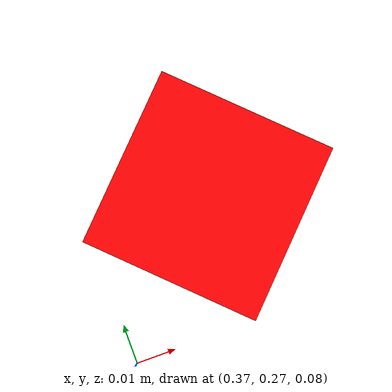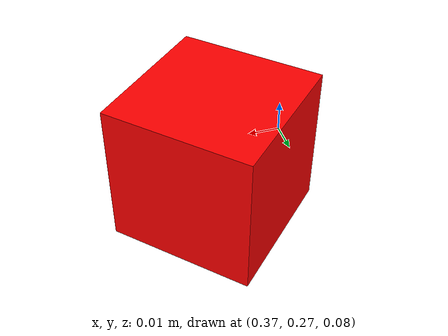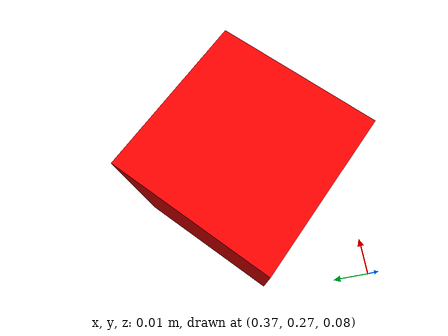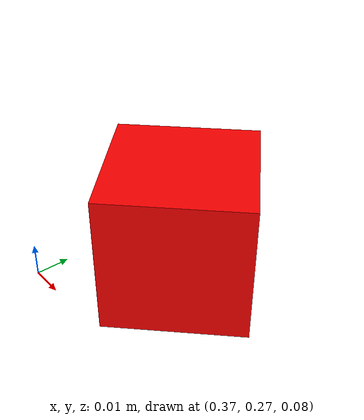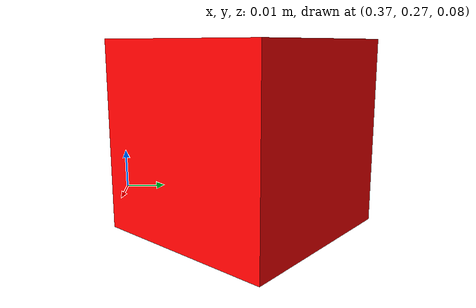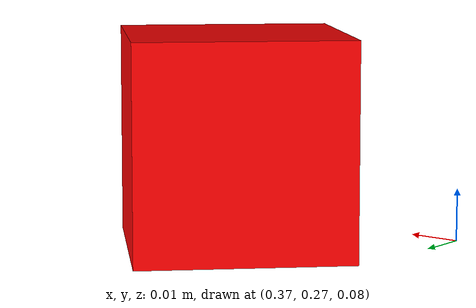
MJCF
<mujoco>
    <worldbody>
        <body name="red_block" pos="0.4 0.3 0.1" quat="0.924 0 0 0.383">
            <joint name="red_block:joint" type="free" damping="0.1"/>
            <geom name="red_block" size="0.02 0.02 0.02" rgba="1 0 0 1" type="box" conaffinity="0" contype="0" group="1"/>
            <geom name="red_block_collision" size="0.02 0.02 0.02" type="box" conaffinity="1" condim="4" contype="1" group="4" mass="0.01"/>
            <site name="red_block" pos="0 0 0" size="0.02 0.02 0.02" rgba="1 0 0 0.5" type="sphere" />
        </body>
    </worldbody>
</mujoco>
